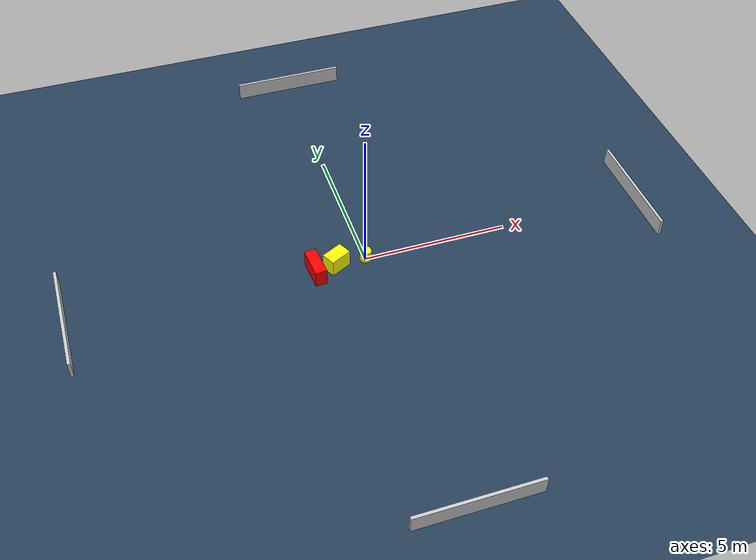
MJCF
<?xml version="1.0" ?>
<mujoco model="generated_environment">
  <option timestep="0.01" integrator="RK4" cone="elliptic"/>
  <default>
    <geom density="1"/>
  </default>
  <asset>
    <texture builtin="gradient" height="3072" name="skybox" rgb1="0.3 0.5 0.7" rgb2="0 0 0" type="skybox" width="512"/>
    <texture builtin="checker" height="300" name="groundplane" rgb1="0.2 0.3 0.4" rgb2="0.1 0.2 0.3" type="2d" width="300"/>
    <material name="groundplane" reflectance="0.2" texrepeat="5 5" texture="groundplane"/>
  </asset>
  <worldbody>
    <light dir="0 0 -1" directional="true" pos="0 0 1.5"/>
    <geom condim="3" friction="0.5 0.005 0.001" material="groundplane" name="floor" pos="0 0 0" size="0 0 0.05" type="plane"/>
    <body name="walls">
      <geom name="wall_1" condim="4" pos="-10.0 0.0 0.3" rgba="0.800000011920929 0.800000011920929 0.800000011920929 1.0" size="0.05 2.0 0.3" type="box"/>
      <geom name="wall_2" condim="4" pos="10.0 0.0 0.3" rgba="0.800000011920929 0.800000011920929 0.800000011920929 1.0" size="0.05 2.0 0.3" type="box"/>
      <geom name="wall_3" condim="4" pos="0.0 -10.0 0.3" rgba="0.800000011920929 0.800000011920929 0.800000011920929 1.0" size="2.0 0.05 0.3" type="box"/>
      <geom name="wall_4" condim="4" pos="0.0 10.0 0.3" rgba="0.800000011920929 0.800000011920929 0.800000011920929 1.0" size="2.0 0.05 0.3" type="box"/>
    </body>
    <body name="robot">
      <joint name="joint_x" type="slide" pos="0 0 0" axis="1 0 0"/>
      <joint name="joint_y" type="slide" pos="0 0 0" axis="0 1 0"/>
      <geom name="robot" type="cylinder" pos="0.0 0.0 0.2" size="0.2 0.2 0.0" mass="5.0" friction="1.0 0.005 0.0001" condim="4" rgba="1.0 1.0 0.0 1.0"/>
    </body>
    <body name="obstacle_1_movable">
      <geom name="obstacle_1_movable" condim="4" pos="-1.0219611256416892 -0.026632658955357363 0.3" euler="0 0 206.6388749945973" friction="0.0 0.005 0.001" rgba="1.0 1.0 0.0 1.0" size="0.3868261934679965 0.24687938075950516 0.3" type="box" mass="0.1"/>
      <joint type="free"/>
    </body>
    <body name="obstacle_2_static">
      <geom name="obstacle_2_static" condim="4" pos="-1.77655586966555 -0.15913206952096473 0.3" euler="0 0 184.30621646121878" friction="0.0 0.005 0.001" rgba="1.0 0.0 0.0 1.0" size="0.2015553100757913 0.536801178441785 0.3" type="box"/>
    </body>
  </worldbody>
  <actuator>
    <motor name="actuator_x" joint="joint_x" gear="1" ctrlrange="-1 1"/>
    <motor name="actuator_y" joint="joint_y" gear="1" ctrlrange="-1 1"/>
  </actuator>
</mujoco>
